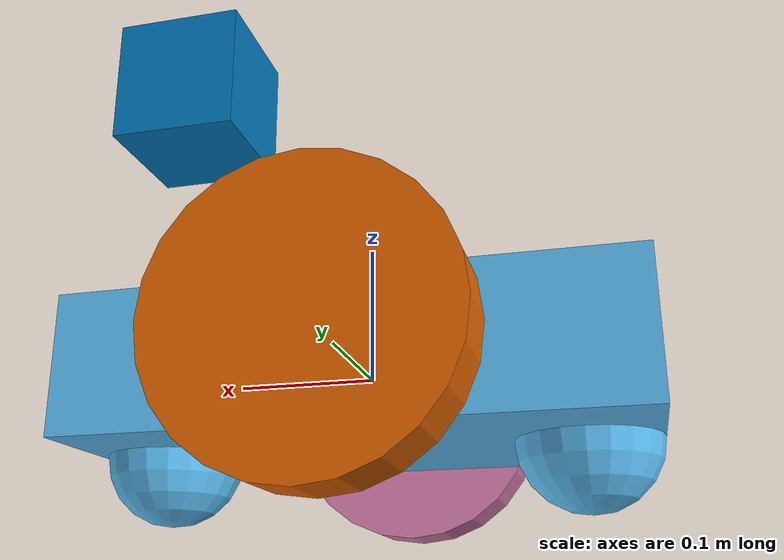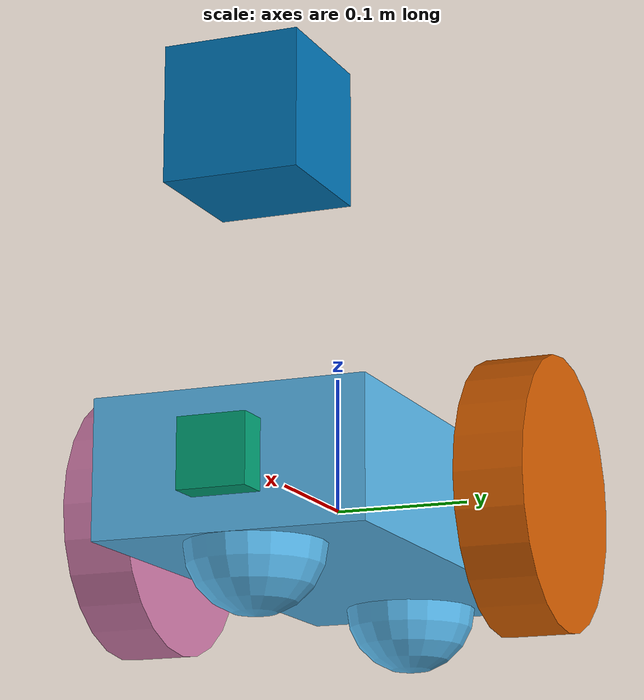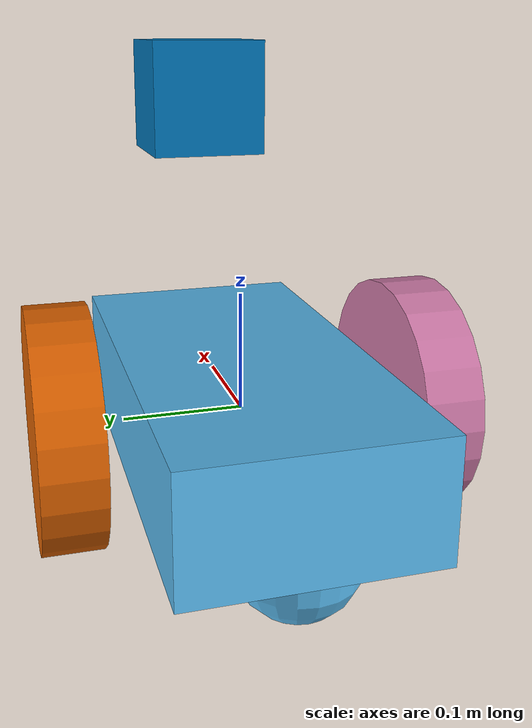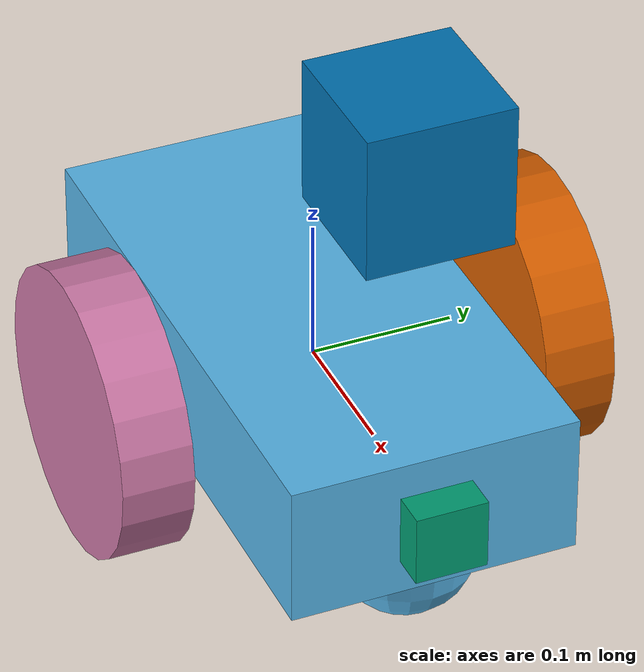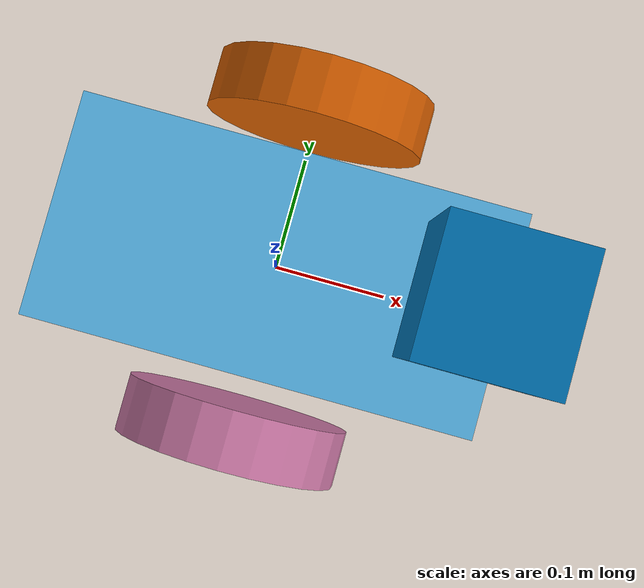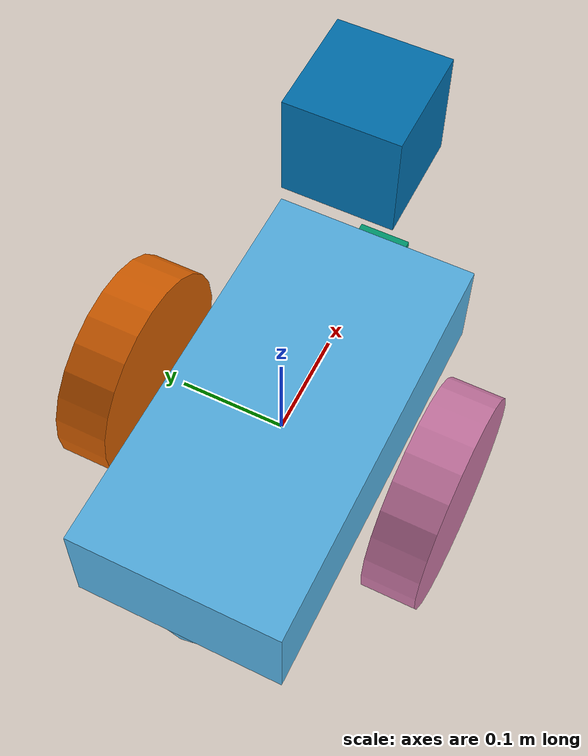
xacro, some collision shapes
<?xml version='1.0'?>

<robot name="udacity_bot" xmlns:xacro="http://www.ros.org/wiki/xacro">
<xacro:include filename="$(find slam_project)/urdf/udacity_bot.gazebo" />
  <link name="robot_footprint"></link>

  <joint name="robot_footprint_joint" type="fixed">
    <origin xyz="0 0 0" rpy="0 0 0" />
    <parent link="robot_footprint"/>
    <child link="chassis" />
  </joint>

  <link name='chassis'>
    <pose>0 0 0.1 0 0 0</pose>

    <inertial>
      <mass value="15.0"/>
      <origin xyz="0.0 0 0" rpy=" 0 0 0"/>
      <inertia
          ixx="0.1" ixy="0" ixz="0"
          iyy="0.1" iyz="0"
          izz="0.1"
      />
    </inertial>

    <collision name='collision'>
      <origin xyz="0 0 0" rpy=" 0 0 0"/>
      <geometry>
        <box size=".4 .2 .1"/>
      </geometry>
    </collision>

    <visual name='chassis_visual'>
      <origin xyz="0 0 0" rpy=" 0 0 0"/>
      <geometry>
        <box size=".4 .2 .1"/>
      </geometry>
    </visual>

    <collision name='back_caster_collision'>
      <origin xyz="-0.15 0 -0.05" rpy=" 0 0 0"/>
      <geometry>
        <sphere radius="0.0495"/>
      </geometry>
      <surface>
        <friction>
          <ode>
            <mu>0</mu>
            <mu2>0</mu2>
            <slip1>1.0</slip1>
            <slip2>1.0</slip2>
          </ode>
        </friction>
      </surface>
    </collision>

    <visual name='back_caster_visual'>
      <origin xyz="-0.15 0 -0.05" rpy=" 0 0 0"/>
      <geometry>
        <sphere radius="0.05"/>
      </geometry>
    </visual>

    <collision name='front_caster_collision'>
      <origin xyz="0.15 0 -0.05" rpy=" 0 0 0"/>
      <geometry>
        <sphere radius="0.0495"/>
      </geometry>
      <surface>
        <friction>
          <ode>
            <mu>0</mu>
            <mu2>0</mu2>
            <slip1>1.0</slip1>
            <slip2>1.0</slip2>
          </ode>
        </friction>
      </surface>
    </collision>

    <visual name='front_caster_visual'>
      <origin xyz="0.15 0 -0.05" rpy=" 0 0 0"/>
      <geometry>
        <sphere radius="0.05"/>
      </geometry>
    </visual>

  </link>

<link name = "camera">
    <inertial>
      <mass value="0.1"/>
      <origin xyz="0.0 0 0" rpy="0 0 0"/>
      <inertia
          ixx="1e-6" ixy="0" ixz="0"
          iyy="1e-6" iyz="0"
          izz="1e-6"
      />
    </inertial>
    <visual name='camera_visual'>
      <origin xyz="0.0 0 0" rpy="0 0 0"/>
      <geometry>
        <box size="0.05 0.05 0.05"/>
      </geometry>
    </visual>
    <collision name='camera_collision'>
      <origin xyz="0.0 0 0" rpy="0 0 0"/>
      <geometry>
        <box size="0.05 0.05 0.05"/>
      </geometry>
      <surface>
        <friction>
          <ode>
            <mu>0</mu>
            <mu2>0</mu2>
            <slip1>1.0</slip1>
            <slip2>1.0</slip2>
          </ode>
        </friction>
      </surface>
    </collision>

</link>

<link name = "camera_rgbd_frame">
    <inertial>
      <mass value="0.1"/>
      <origin xyz="0.0 0 0.0" rpy="-1.58 0 -1.58"/>
      <inertia
          ixx="1e-6" ixy="0" ixz="0"
          iyy="1e-6" iyz="0"
          izz="1e-6"
      />
    </inertial>

</link>

<link name = "hokuyo">
    <inertial>
      <mass value="0.1"/>
      <origin xyz="0.0 0 0.0" rpy="0 0 0"/>
      <inertia
          ixx="1e-6" ixy="0" ixz="0"
          iyy="1e-6" iyz="0"
          izz="1e-6"
      />
    </inertial>
    <visual name='hokuyo_visual'>

      <origin xyz="0.0 0 0.15" rpy="0 0 0"/>
      <geometry>
      <mesh filename="package://slam_project/meshes/hokuyo.dae"/>
      </geometry>
    </visual>
    <collision name='hokuyo_collision'>
      <origin xyz="0.0 0 0.1" rpy="0 0 0"/>
      <geometry>
        <box size="0.1 0.1 0.1"/>
      </geometry>
      <surface>
        <friction>
          <ode>
            <mu>0</mu>
            <mu2>0</mu2>
            <slip1>1.0</slip1>
            <slip2>1.0</slip2>
          </ode>
        </friction>
      </surface>
    </collision>

</link>

<link name = "left_wheel">
    <inertial>
      <mass value="5.0"/>
      <origin xyz="0.0 0 0" rpy=" 0 1.5707 1.5707"/>
      <inertia
          ixx="0.1" ixy="0" ixz="0"
          iyy="0.1" iyz="0"
          izz="0.1"
      />
    </inertial>
    <visual name='left_wheel_visual'>
      <origin xyz="0.0 0 0" rpy=" 0 1.5707 1.5707"/>
      <geometry>
        <cylinder radius="0.1" length="0.05"/>
      </geometry>
    </visual>
    <collision name='left_wheel_collision'>
      <origin xyz="0.0 0 0" rpy=" 0 1.5707 1.5707"/>
      <geometry>
        <cylinder radius="0.1" length="0.05"/>
      </geometry>
      <surface>
        <friction>
          <ode>
            <mu>0</mu>
            <mu2>0</mu2>
            <slip1>1.0</slip1>
            <slip2>1.0</slip2>
          </ode>
        </friction>
      </surface>
    </collision>

</link>

<link name = "right_wheel">
    <inertial>
      <mass value="5.0"/>
      <origin xyz="0.0 0 0" rpy=" 0 1.5707 1.5707"/>
      <inertia
          ixx="0.1" ixy="0" ixz="0"
          iyy="0.1" iyz="0"
          izz="0.1"
      />
    </inertial>
    <visual name='right_wheel_visual'>
      <origin xyz="0.0 0 0" rpy=" 0 1.5707 1.5707"/>
      <geometry>
        <cylinder radius="0.1" length="0.05"/>
      </geometry>
    </visual>
    <collision name='right_wheel_collision'>
      <origin xyz="0.0 0 0" rpy=" 0 1.5707 1.5707"/>
      <geometry>
        <cylinder radius="0.1" length="0.05"/>
      </geometry>
      <surface>
        <friction>
          <ode>
            <mu>0</mu>
            <mu2>0</mu2>
            <slip1>1.0</slip1>
            <slip2>1.0</slip2>
          </ode>
        </friction>
      </surface>
    </collision>

</link>

<joint type="continuous" name="left_wheel_hinge">
    <origin xyz="0 0.15 0" rpy="0 0 0"/>
    <child link="left_wheel"/>
    <parent link="chassis"/>
    <axis xyz="0 1 0" rpy="0 0 0"/>
    <limit effort="10000" velocity="1000"/>
    <joint_properties damping="1.0" friction="1.0"/>
  </joint>

<joint type="continuous" name="right_wheel_hinge">
    <origin xyz="0 -0.15 0" rpy="0 0 0"/>
    <child link="right_wheel"/>
    <parent link="chassis"/>
    <axis xyz="0 1 0" rpy="0 0 0"/>
    <limit effort="10000" velocity="1000"/>
    <joint_properties damping="1.0" friction="1.0"/>
  </joint>

<joint type="fixed" name="camera_joint">
    <origin xyz="0.2 0.0 0" rpy="0 0 0"/>
    <axis xyz="0 1 0" rpy="0 0 0"/>
    <child link="camera"/>
    <parent link="chassis"/>
  </joint>

<joint type="fixed" name="hokuyo_joint">
    <origin xyz="0.15 0.0 0.15" rpy="0 0 0"/>
    <axis xyz="0 1 0" rpy="0 0 0"/>
    <child link="hokuyo"/>
    <parent link="chassis"/>
  </joint>

<joint type="fixed" name="rgbd_camera_joint">
    <origin xyz="0.2 0.0 0" rpy="-1.58 0 -1.58"/>
    <axis xyz="0 0 0" rpy="-1.58 0 -1.58"/>
    <child link="camera_rgbd_frame"/>
    <parent link="camera"/>
  </joint>

</robot>
